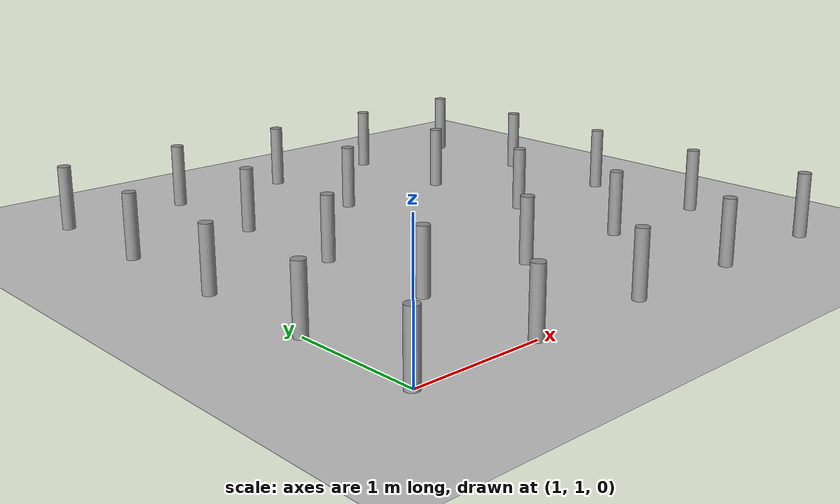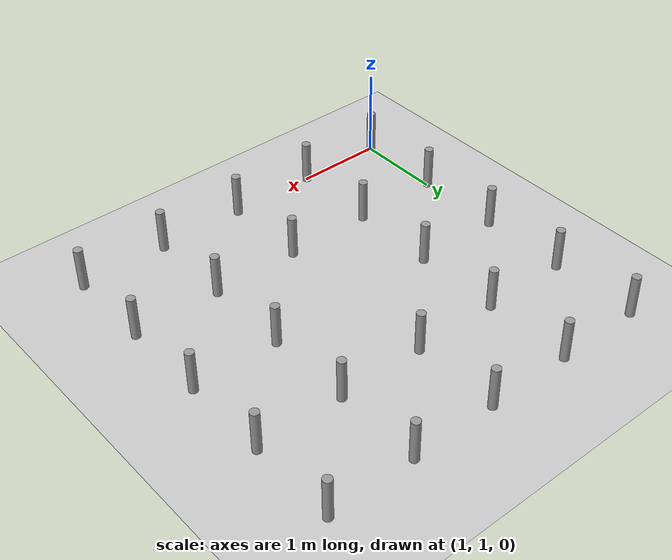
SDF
<sdf version="1.6">
 <world name="default">
  <light name="sun" type="directional">
   <pose>0 0 10 0 -0 0</pose>
   <diffuse>0.8 0.8 0.8 1</diffuse>
   <specular>0.2 0.2 0.2 1</specular>
   <attenuation>
    <range>1000</range>
    <constant>0.9</constant>
    <linear>0.01</linear>
    <quadratic>0.001</quadratic>
   </attenuation>
   <direction>-0.5 0.1 -0.9</direction>
  </light>
  <model name="ground_plane">
   <static>1</static>
   <link name="link">
    <collision name="collision">
     <geometry><plane><normal>0 0 1</normal><size>100 100</size></plane></geometry>
     <surface>
      <contact><collide_bitmask>65535</collide_bitmask></contact>
      <friction><ode><mu>100</mu><mu2>50</mu2></ode></friction>
     </surface>
    </collision>
    <visual name="visual">
     <cast_shadows>0</cast_shadows>
     <geometry><plane><normal>0 0 1</normal><size>100 100</size></plane></geometry>
     <material>
      <script><uri>file://media/materials/scripts/gazebo.material</uri><name>Gazebo/Grey</name></script>
     </material>
    </visual>
   </link>
  </model>
  <gravity>0 0 -9.8</gravity>
  <magnetic_field>6e-06 2.3e-05 -4.2e-05</magnetic_field>
  <atmosphere type="adiabatic"/>
  <physics name="default_physics" default="0" type="ode">
   <max_step_size>0.001</max_step_size>
   <real_time_factor>1</real_time_factor>
   <real_time_update_rate>1000</real_time_update_rate>
  </physics>
  <scene><ambient>0.4 0.4 0.4 1</ambient><background>0.7 0.7 0.7 1</background><shadows>1</shadows></scene>
  <audio><device>default</device></audio>
  <spherical_coordinates>
   <surface_model>EARTH_WGS84</surface_model>
   <latitude_deg>0</latitude_deg>
   <longitude_deg>0</longitude_deg>
   <elevation>0</elevation>
   <heading_deg>0</heading_deg>
  </spherical_coordinates>
  <model name="obstacles">
   <link name="link_0_clone">
    <inertial>
     <mass>1</mass>
     <inertia><ixx>0.145833</ixx><ixy>0</ixy><ixz>0</ixz><iyy>0.145833</iyy><iyz>0</iyz><izz>0.125</izz></inertia>
    </inertial>
    <pose>-2 0 0 0 -0 0</pose>
    <visual name="visual">
     <geometry><cylinder><radius>0.05</radius><length>0.5</length></cylinder></geometry>
     <material>
      <lighting>1</lighting>
      <script><uri>file://media/materials/scripts/gazebo.material</uri><name>Gazebo/Grey</name></script>
      <shader type="vertex"><normal_map>__default__</normal_map></shader>
      <ambient>0.3 0.3 0.3 1</ambient>
      <diffuse>0.7 0.7 0.7 1</diffuse>
      <specular>0.01 0.01 0.01 1</specular>
      <emissive>0 0 0 1</emissive>
     </material>
    </visual>
    <collision name="collision">
     <geometry><cylinder><radius>0.05</radius><length>0.5</length></cylinder></geometry>
     <surface>
      <friction>
       <ode><mu>1</mu><mu2>1</mu2><fdir1>0 0 0</fdir1><slip1>0</slip1><slip2>0</slip2></ode>
       <torsional>
        <coefficient>1</coefficient>
        <patch_radius>0</patch_radius>
        <surface_radius>0</surface_radius>
        <use_patch_radius>1</use_patch_radius>
        <ode><slip>0</slip></ode>
       </torsional>
      </friction>
      <bounce><restitution_coefficient>0</restitution_coefficient><threshold>1e+06</threshold></bounce>
      <contact>
       <collide_without_contact>0</collide_without_contact>
       <collide_without_contact_bitmask>1</collide_without_contact_bitmask>
       <collide_bitmask>1</collide_bitmask>
       <ode>
        <soft_cfm>0</soft_cfm>
        <soft_erp>0.2</soft_erp>
        <kp>1e+13</kp>
        <kd>1</kd>
        <max_vel>0.01</max_vel>
        <min_depth>0</min_depth>
       </ode>
       <bullet>
        <split_impulse>1</split_impulse>
        <split_impulse_penetration_threshold>-0.01</split_impulse_penetration_threshold>
        <soft_cfm>0</soft_cfm>
        <soft_erp>0.2</soft_erp>
        <kp>1e+13</kp>
        <kd>1</kd>
       </bullet>
      </contact>
     </surface>
    </collision>
   </link>
   <link name="link_0_clone_0">
    <inertial>
     <mass>1</mass>
     <inertia><ixx>0.145833</ixx><ixy>0</ixy><ixz>0</ixz><iyy>0.145833</iyy><iyz>0</iyz><izz>0.125</izz></inertia>
    </inertial>
    <pose>-1 0 0 0 -0 0</pose>
    <visual name="visual">
     <geometry><cylinder><radius>0.05</radius><length>0.5</length></cylinder></geometry>
     <material>
      <lighting>1</lighting>
      <script><uri>file://media/materials/scripts/gazebo.material</uri><name>Gazebo/Grey</name></script>
      <shader type="vertex"><normal_map>__default__</normal_map></shader>
      <ambient>0.3 0.3 0.3 1</ambient>
      <diffuse>0.7 0.7 0.7 1</diffuse>
      <specular>0.01 0.01 0.01 1</specular>
      <emissive>0 0 0 1</emissive>
     </material>
    </visual>
    <collision name="collision">
     <geometry><cylinder><radius>0.05</radius><length>0.5</length></cylinder></geometry>
     <surface>
      <friction>
       <ode><mu>1</mu><mu2>1</mu2><fdir1>0 0 0</fdir1><slip1>0</slip1><slip2>0</slip2></ode>
       <torsional>
        <coefficient>1</coefficient>
        <patch_radius>0</patch_radius>
        <surface_radius>0</surface_radius>
        <use_patch_radius>1</use_patch_radius>
        <ode><slip>0</slip></ode>
       </torsional>
      </friction>
      <bounce><restitution_coefficient>0</restitution_coefficient><threshold>1e+06</threshold></bounce>
      <contact>
       <collide_without_contact>0</collide_without_contact>
       <collide_without_contact_bitmask>1</collide_without_contact_bitmask>
       <collide_bitmask>1</collide_bitmask>
       <ode>
        <soft_cfm>0</soft_cfm>
        <soft_erp>0.2</soft_erp>
        <kp>1e+13</kp>
        <kd>1</kd>
        <max_vel>0.01</max_vel>
        <min_depth>0</min_depth>
       </ode>
       <bullet>
        <split_impulse>1</split_impulse>
        <split_impulse_penetration_threshold>-0.01</split_impulse_penetration_threshold>
        <soft_cfm>0</soft_cfm>
        <soft_erp>0.2</soft_erp>
        <kp>1e+13</kp>
        <kd>1</kd>
       </bullet>
      </contact>
     </surface>
    </collision>
   </link>
   <link name="link_0_clone_1">
    <inertial>
     <mass>1</mass>
     <inertia><ixx>0.145833</ixx><ixy>0</ixy><ixz>0</ixz><iyy>0.145833</iyy><iyz>0</iyz><izz>0.125</izz></inertia>
    </inertial>
    <pose>-2 -1 0 0 -0 0</pose>
    <visual name="visual">
     <geometry><cylinder><radius>0.05</radius><length>0.5</length></cylinder></geometry>
     <material>
      <lighting>1</lighting>
      <script><uri>file://media/materials/scripts/gazebo.material</uri><name>Gazebo/Grey</name></script>
      <shader type="vertex"><normal_map>__default__</normal_map></shader>
      <ambient>0.3 0.3 0.3 1</ambient>
      <diffuse>0.7 0.7 0.7 1</diffuse>
      <specular>0.01 0.01 0.01 1</specular>
      <emissive>0 0 0 1</emissive>
     </material>
    </visual>
    <collision name="collision">
     <geometry><cylinder><radius>0.05</radius><length>0.5</length></cylinder></geometry>
     <surface>
      <friction>
       <ode><mu>1</mu><mu2>1</mu2><fdir1>0 0 0</fdir1><slip1>0</slip1><slip2>0</slip2></ode>
       <torsional>
        <coefficient>1</coefficient>
        <patch_radius>0</patch_radius>
        <surface_radius>0</surface_radius>
        <use_patch_radius>1</use_patch_radius>
        <ode><slip>0</slip></ode>
       </torsional>
      </friction>
      <bounce><restitution_coefficient>0</restitution_coefficient><threshold>1e+06</threshold></bounce>
      <contact>
       <collide_without_contact>0</collide_without_contact>
       <collide_without_contact_bitmask>1</collide_without_contact_bitmask>
       <collide_bitmask>1</collide_bitmask>
       <ode>
        <soft_cfm>0</soft_cfm>
        <soft_erp>0.2</soft_erp>
        <kp>1e+13</kp>
        <kd>1</kd>
        <max_vel>0.01</max_vel>
        <min_depth>0</min_depth>
       </ode>
       <bullet>
        <split_impulse>1</split_impulse>
        <split_impulse_penetration_threshold>-0.01</split_impulse_penetration_threshold>
        <soft_cfm>0</soft_cfm>
        <soft_erp>0.2</soft_erp>
        <kp>1e+13</kp>
        <kd>1</kd>
       </bullet>
      </contact>
     </surface>
    </collision>
   </link>
   <link name="link_0_clone_10">
    <inertial>
     <mass>1</mass>
     <inertia><ixx>0.145833</ixx><ixy>0</ixy><ixz>0</ixz><iyy>0.145833</iyy><iyz>0</iyz><izz>0.125</izz></inertia>
    </inertial>
    <pose>2 -1 0 0 -0 0</pose>
    <visual name="visual">
     <geometry><cylinder><radius>0.05</radius><length>0.5</length></cylinder></geometry>
     <material>
      <lighting>1</lighting>
      <script><uri>file://media/materials/scripts/gazebo.material</uri><name>Gazebo/Grey</name></script>
      <shader type="vertex"><normal_map>__default__</normal_map></shader>
      <ambient>0.3 0.3 0.3 1</ambient>
      <diffuse>0.7 0.7 0.7 1</diffuse>
      <specular>0.01 0.01 0.01 1</specular>
      <emissive>0 0 0 1</emissive>
     </material>
    </visual>
    <collision name="collision">
     <geometry><cylinder><radius>0.05</radius><length>0.5</length></cylinder></geometry>
     <surface>
      <friction>
       <ode><mu>1</mu><mu2>1</mu2><fdir1>0 0 0</fdir1><slip1>0</slip1><slip2>0</slip2></ode>
       <torsional>
        <coefficient>1</coefficient>
        <patch_radius>0</patch_radius>
        <surface_radius>0</surface_radius>
        <use_patch_radius>1</use_patch_radius>
        <ode><slip>0</slip></ode>
       </torsional>
      </friction>
      <bounce><restitution_coefficient>0</restitution_coefficient><threshold>1e+06</threshold></bounce>
      <contact>
       <collide_without_contact>0</collide_without_contact>
       <collide_without_contact_bitmask>1</collide_without_contact_bitmask>
       <collide_bitmask>1</collide_bitmask>
       <ode>
        <soft_cfm>0</soft_cfm>
        <soft_erp>0.2</soft_erp>
        <kp>1e+13</kp>
        <kd>1</kd>
        <max_vel>0.01</max_vel>
        <min_depth>0</min_depth>
       </ode>
       <bullet>
        <split_impulse>1</split_impulse>
        <split_impulse_penetration_threshold>-0.01</split_impulse_penetration_threshold>
        <soft_cfm>0</soft_cfm>
        <soft_erp>0.2</soft_erp>
        <kp>1e+13</kp>
        <kd>1</kd>
       </bullet>
      </contact>
     </surface>
    </collision>
   </link>
   <link name="link_0_clone_11">
    <inertial>
     <mass>1</mass>
     <inertia><ixx>0.145833</ixx><ixy>0</ixy><ixz>0</ixz><iyy>0.145833</iyy><iyz>0</iyz><izz>0.125</izz></inertia>
    </inertial>
    <pose>2 0 0 0 -0 0</pose>
    <visual name="visual">
     <geometry><cylinder><radius>0.05</radius><length>0.5</length></cylinder></geometry>
     <material>
      <lighting>1</lighting>
      <script><uri>file://media/materials/scripts/gazebo.material</uri><name>Gazebo/Grey</name></script>
      <shader type="vertex"><normal_map>__default__</normal_map></shader>
      <ambient>0.3 0.3 0.3 1</ambient>
      <diffuse>0.7 0.7 0.7 1</diffuse>
      <specular>0.01 0.01 0.01 1</specular>
      <emissive>0 0 0 1</emissive>
     </material>
    </visual>
    <collision name="collision">
     <geometry><cylinder><radius>0.05</radius><length>0.5</length></cylinder></geometry>
     <surface>
      <friction>
       <ode><mu>1</mu><mu2>1</mu2><fdir1>0 0 0</fdir1><slip1>0</slip1><slip2>0</slip2></ode>
       <torsional>
        <coefficient>1</coefficient>
        <patch_radius>0</patch_radius>
        <surface_radius>0</surface_radius>
        <use_patch_radius>1</use_patch_radius>
        <ode><slip>0</slip></ode>
       </torsional>
      </friction>
      <bounce><restitution_coefficient>0</restitution_coefficient><threshold>1e+06</threshold></bounce>
      <contact>
       <collide_without_contact>0</collide_without_contact>
       <collide_without_contact_bitmask>1</collide_without_contact_bitmask>
       <collide_bitmask>1</collide_bitmask>
       <ode>
        <soft_cfm>0</soft_cfm>
        <soft_erp>0.2</soft_erp>
        <kp>1e+13</kp>
        <kd>1</kd>
        <max_vel>0.01</max_vel>
        <min_depth>0</min_depth>
       </ode>
       <bullet>
        <split_impulse>1</split_impulse>
        <split_impulse_penetration_threshold>-0.01</split_impulse_penetration_threshold>
        <soft_cfm>0</soft_cfm>
        <soft_erp>0.2</soft_erp>
        <kp>1e+13</kp>
        <kd>1</kd>
       </bullet>
      </contact>
     </surface>
    </collision>
   </link>
   <link name="link_0_clone_12">
    <inertial>
     <mass>1</mass>
     <inertia><ixx>0.145833</ixx><ixy>0</ixy><ixz>0</ixz><iyy>0.145833</iyy><iyz>0</iyz><izz>0.125</izz></inertia>
    </inertial>
    <pose>1 0 0 0 -0 0</pose>
    <visual name="visual">
     <geometry><cylinder><radius>0.05</radius><length>0.5</length></cylinder></geometry>
     <material>
      <lighting>1</lighting>
      <script><uri>file://media/materials/scripts/gazebo.material</uri><name>Gazebo/Grey</name></script>
      <shader type="vertex"><normal_map>__default__</normal_map></shader>
      <ambient>0.3 0.3 0.3 1</ambient>
      <diffuse>0.7 0.7 0.7 1</diffuse>
      <specular>0.01 0.01 0.01 1</specular>
      <emissive>0 0 0 1</emissive>
     </material>
    </visual>
    <collision name="collision">
     <geometry><cylinder><radius>0.05</radius><length>0.5</length></cylinder></geometry>
     <surface>
      <friction>
       <ode><mu>1</mu><mu2>1</mu2><fdir1>0 0 0</fdir1><slip1>0</slip1><slip2>0</slip2></ode>
       <torsional>
        <coefficient>1</coefficient>
        <patch_radius>0</patch_radius>
        <surface_radius>0</surface_radius>
        <use_patch_radius>1</use_patch_radius>
        <ode><slip>0</slip></ode>
       </torsional>
      </friction>
      <bounce><restitution_coefficient>0</restitution_coefficient><threshold>1e+06</threshold></bounce>
      <contact>
       <collide_without_contact>0</collide_without_contact>
       <collide_without_contact_bitmask>1</collide_without_contact_bitmask>
       <collide_bitmask>1</collide_bitmask>
       <ode>
        <soft_cfm>0</soft_cfm>
        <soft_erp>0.2</soft_erp>
        <kp>1e+13</kp>
        <kd>1</kd>
        <max_vel>0.01</max_vel>
        <min_depth>0</min_depth>
       </ode>
       <bullet>
        <split_impulse>1</split_impulse>
        <split_impulse_penetration_threshold>-0.01</split_impulse_penetration_threshold>
        <soft_cfm>0</soft_cfm>
        <soft_erp>0.2</soft_erp>
        <kp>1e+13</kp>
        <kd>1</kd>
       </bullet>
      </contact>
     </surface>
    </collision>
   </link>
   <link name="link_0_clone_13">
    <inertial>
     <mass>1</mass>
     <inertia><ixx>0.145833</ixx><ixy>0</ixy><ixz>0</ixz><iyy>0.145833</iyy><iyz>0</iyz><izz>0.125</izz></inertia>
    </inertial>
    <pose>2 1 0 0 -0 0</pose>
    <visual name="visual">
     <geometry><cylinder><radius>0.05</radius><length>0.5</length></cylinder></geometry>
     <material>
      <lighting>1</lighting>
      <script><uri>file://media/materials/scripts/gazebo.material</uri><name>Gazebo/Grey</name></script>
      <shader type="vertex"><normal_map>__default__</normal_map></shader>
      <ambient>0.3 0.3 0.3 1</ambient>
      <diffuse>0.7 0.7 0.7 1</diffuse>
      <specular>0.01 0.01 0.01 1</specular>
      <emissive>0 0 0 1</emissive>
     </material>
    </visual>
    <collision name="collision">
     <geometry><cylinder><radius>0.05</radius><length>0.5</length></cylinder></geometry>
     <surface>
      <friction>
       <ode><mu>1</mu><mu2>1</mu2><fdir1>0 0 0</fdir1><slip1>0</slip1><slip2>0</slip2></ode>
       <torsional>
        <coefficient>1</coefficient>
        <patch_radius>0</patch_radius>
        <surface_radius>0</surface_radius>
        <use_patch_radius>1</use_patch_radius>
        <ode><slip>0</slip></ode>
       </torsional>
      </friction>
      <bounce><restitution_coefficient>0</restitution_coefficient><threshold>1e+06</threshold></bounce>
      <contact>
       <collide_without_contact>0</collide_without_contact>
       <collide_without_contact_bitmask>1</collide_without_contact_bitmask>
       <collide_bitmask>1</collide_bitmask>
       <ode>
        <soft_cfm>0</soft_cfm>
        <soft_erp>0.2</soft_erp>
        <kp>1e+13</kp>
        <kd>1</kd>
        <max_vel>0.01</max_vel>
        <min_depth>0</min_depth>
       </ode>
       <bullet>
        <split_impulse>1</split_impulse>
        <split_impulse_penetration_threshold>-0.01</split_impulse_penetration_threshold>
        <soft_cfm>0</soft_cfm>
        <soft_erp>0.2</soft_erp>
        <kp>1e+13</kp>
        <kd>1</kd>
       </bullet>
      </contact>
     </surface>
    </collision>
   </link>
   <link name="link_0_clone_14">
    <inertial>
     <mass>1</mass>
     <inertia><ixx>0.145833</ixx><ixy>0</ixy><ixz>0</ixz><iyy>0.145833</iyy><iyz>0</iyz><izz>0.125</izz></inertia>
    </inertial>
    <pose>2 2 0 0 -0 0</pose>
    <visual name="visual">
     <geometry><cylinder><radius>0.05</radius><length>0.5</length></cylinder></geometry>
     <material>
      <lighting>1</lighting>
      <script><uri>file://media/materials/scripts/gazebo.material</uri><name>Gazebo/Grey</name></script>
      <shader type="vertex"><normal_map>__default__</normal_map></shader>
      <ambient>0.3 0.3 0.3 1</ambient>
      <diffuse>0.7 0.7 0.7 1</diffuse>
      <specular>0.01 0.01 0.01 1</specular>
      <emissive>0 0 0 1</emissive>
     </material>
    </visual>
    <collision name="collision">
     <geometry><cylinder><radius>0.05</radius><length>0.5</length></cylinder></geometry>
     <surface>
      <friction>
       <ode><mu>1</mu><mu2>1</mu2><fdir1>0 0 0</fdir1><slip1>0</slip1><slip2>0</slip2></ode>
       <torsional>
        <coefficient>1</coefficient>
        <patch_radius>0</patch_radius>
        <surface_radius>0</surface_radius>
        <use_patch_radius>1</use_patch_radius>
        <ode><slip>0</slip></ode>
       </torsional>
      </friction>
      <bounce><restitution_coefficient>0</restitution_coefficient><threshold>1e+06</threshold></bounce>
      <contact>
       <collide_without_contact>0</collide_without_contact>
       <collide_without_contact_bitmask>1</collide_without_contact_bitmask>
       <collide_bitmask>1</collide_bitmask>
       <ode>
        <soft_cfm>0</soft_cfm>
        <soft_erp>0.2</soft_erp>
        <kp>1e+13</kp>
        <kd>1</kd>
        <max_vel>0.01</max_vel>
        <min_depth>0</min_depth>
       </ode>
       <bullet>
        <split_impulse>1</split_impulse>
        <split_impulse_penetration_threshold>-0.01</split_impulse_penetration_threshold>
        <soft_cfm>0</soft_cfm>
        <soft_erp>0.2</soft_erp>
        <kp>1e+13</kp>
        <kd>1</kd>
       </bullet>
      </contact>
     </surface>
    </collision>
   </link>
   <link name="link_0_clone_15">
    <inertial>
     <mass>1</mass>
     <inertia><ixx>0.145833</ixx><ixy>0</ixy><ixz>0</ixz><iyy>0.145833</iyy><iyz>0</iyz><izz>0.125</izz></inertia>
    </inertial>
    <pose>1 2 0 0 -0 0</pose>
    <visual name="visual">
     <geometry><cylinder><radius>0.05</radius><length>0.5</length></cylinder></geometry>
     <material>
      <lighting>1</lighting>
      <script><uri>file://media/materials/scripts/gazebo.material</uri><name>Gazebo/Grey</name></script>
      <shader type="vertex"><normal_map>__default__</normal_map></shader>
      <ambient>0.3 0.3 0.3 1</ambient>
      <diffuse>0.7 0.7 0.7 1</diffuse>
      <specular>0.01 0.01 0.01 1</specular>
      <emissive>0 0 0 1</emissive>
     </material>
    </visual>
    <collision name="collision">
     <geometry><cylinder><radius>0.05</radius><length>0.5</length></cylinder></geometry>
     <surface>
      <friction>
       <ode><mu>1</mu><mu2>1</mu2><fdir1>0 0 0</fdir1><slip1>0</slip1><slip2>0</slip2></ode>
       <torsional>
        <coefficient>1</coefficient>
        <patch_radius>0</patch_radius>
        <surface_radius>0</surface_radius>
        <use_patch_radius>1</use_patch_radius>
        <ode><slip>0</slip></ode>
       </torsional>
      </friction>
      <bounce><restitution_coefficient>0</restitution_coefficient><threshold>1e+06</threshold></bounce>
      <contact>
       <collide_without_contact>0</collide_without_contact>
       <collide_without_contact_bitmask>1</collide_without_contact_bitmask>
       <collide_bitmask>1</collide_bitmask>
       <ode>
        <soft_cfm>0</soft_cfm>
        <soft_erp>0.2</soft_erp>
        <kp>1e+13</kp>
        <kd>1</kd>
        <max_vel>0.01</max_vel>
        <min_depth>0</min_depth>
       </ode>
       <bullet>
        <split_impulse>1</split_impulse>
        <split_impulse_penetration_threshold>-0.01</split_impulse_penetration_threshold>
        <soft_cfm>0</soft_cfm>
        <soft_erp>0.2</soft_erp>
        <kp>1e+13</kp>
        <kd>1</kd>
       </bullet>
      </contact>
     </surface>
    </collision>
   </link>
   <link name="link_0_clone_16">
    <inertial>
     <mass>1</mass>
     <inertia><ixx>0.145833</ixx><ixy>0</ixy><ixz>0</ixz><iyy>0.145833</iyy><iyz>0</iyz><izz>0.125</izz></inertia>
    </inertial>
    <pose>1 1 0 0 -0 0</pose>
    <visual name="visual">
     <geometry><cylinder><radius>0.05</radius><length>0.5</length></cylinder></geometry>
     <material>
      <lighting>1</lighting>
      <script><uri>file://media/materials/scripts/gazebo.material</uri><name>Gazebo/Grey</name></script>
      <shader type="vertex"><normal_map>__default__</normal_map></shader>
      <ambient>0.3 0.3 0.3 1</ambient>
      <diffuse>0.7 0.7 0.7 1</diffuse>
      <specular>0.01 0.01 0.01 1</specular>
      <emissive>0 0 0 1</emissive>
     </material>
    </visual>
    <collision name="collision">
     <geometry><cylinder><radius>0.05</radius><length>0.5</length></cylinder></geometry>
     <surface>
      <friction>
       <ode><mu>1</mu><mu2>1</mu2><fdir1>0 0 0</fdir1><slip1>0</slip1><slip2>0</slip2></ode>
       <torsional>
        <coefficient>1</coefficient>
        <patch_radius>0</patch_radius>
        <surface_radius>0</surface_radius>
        <use_patch_radius>1</use_patch_radius>
        <ode><slip>0</slip></ode>
       </torsional>
      </friction>
      <bounce><restitution_coefficient>0</restitution_coefficient><threshold>1e+06</threshold></bounce>
      <contact>
       <collide_without_contact>0</collide_without_contact>
       <collide_without_contact_bitmask>1</collide_without_contact_bitmask>
       <collide_bitmask>1</collide_bitmask>
       <ode>
        <soft_cfm>0</soft_cfm>
        <soft_erp>0.2</soft_erp>
        <kp>1e+13</kp>
        <kd>1</kd>
        <max_vel>0.01</max_vel>
        <min_depth>0</min_depth>
       </ode>
       <bullet>
        <split_impulse>1</split_impulse>
        <split_impulse_penetration_threshold>-0.01</split_impulse_penetration_threshold>
        <soft_cfm>0</soft_cfm>
        <soft_erp>0.2</soft_erp>
        <kp>1e+13</kp>
        <kd>1</kd>
       </bullet>
      </contact>
     </surface>
    </collision>
   </link>
   <link name="link_0_clone_17">
    <inertial>
     <mass>1</mass>
     <inertia><ixx>0.145833</ixx><ixy>0</ixy><ixz>0</ixz><iyy>0.145833</iyy><iyz>0</iyz><izz>0.125</izz></inertia>
    </inertial>
    <pose>0 2 0 0 -0 0</pose>
    <visual name="visual">
     <geometry><cylinder><radius>0.05</radius><length>0.5</length></cylinder></geometry>
     <material>
      <lighting>1</lighting>
      <script><uri>file://media/materials/scripts/gazebo.material</uri><name>Gazebo/Grey</name></script>
      <shader type="vertex"><normal_map>__default__</normal_map></shader>
      <ambient>0.3 0.3 0.3 1</ambient>
      <diffuse>0.7 0.7 0.7 1</diffuse>
      <specular>0.01 0.01 0.01 1</specular>
      <emissive>0 0 0 1</emissive>
     </material>
    </visual>
    <collision name="collision">
     <geometry><cylinder><radius>0.05</radius><length>0.5</length></cylinder></geometry>
     <surface>
      <friction>
       <ode><mu>1</mu><mu2>1</mu2><fdir1>0 0 0</fdir1><slip1>0</slip1><slip2>0</slip2></ode>
       <torsional>
        <coefficient>1</coefficient>
        <patch_radius>0</patch_radius>
        <surface_radius>0</surface_radius>
        <use_patch_radius>1</use_patch_radius>
        <ode><slip>0</slip></ode>
       </torsional>
      </friction>
      <bounce><restitution_coefficient>0</restitution_coefficient><threshold>1e+06</threshold></bounce>
      <contact>
       <collide_without_contact>0</collide_without_contact>
       <collide_without_contact_bitmask>1</collide_without_contact_bitmask>
       <collide_bitmask>1</collide_bitmask>
       <ode>
        <soft_cfm>0</soft_cfm>
        <soft_erp>0.2</soft_erp>
        <kp>1e+13</kp>
        <kd>1</kd>
        <max_vel>0.01</max_vel>
        <min_depth>0</min_depth>
       </ode>
       <bullet>
        <split_impulse>1</split_impulse>
        <split_impulse_penetration_threshold>-0.01</split_impulse_penetration_threshold>
        <soft_cfm>0</soft_cfm>
        <soft_erp>0.2</soft_erp>
        <kp>1e+13</kp>
        <kd>1</kd>
       </bullet>
      </contact>
     </surface>
    </collision>
   </link>
   <link name="link_0_clone_18">
    <inertial>
     <mass>1</mass>
     <inertia><ixx>0.145833</ixx><ixy>0</ixy><ixz>0</ixz><iyy>0.145833</iyy><iyz>0</iyz><izz>0.125</izz></inertia>
    </inertial>
    <pose>0 1 0 0 -0 0</pose>
    <visual name="visual">
     <geometry><cylinder><radius>0.05</radius><length>0.5</length></cylinder></geometry>
     <material>
      <lighting>1</lighting>
      <script><uri>file://media/materials/scripts/gazebo.material</uri><name>Gazebo/Grey</name></script>
      <shader type="vertex"><normal_map>__default__</normal_map></shader>
      <ambient>0.3 0.3 0.3 1</ambient>
      <diffuse>0.7 0.7 0.7 1</diffuse>
      <specular>0.01 0.01 0.01 1</specular>
      <emissive>0 0 0 1</emissive>
     </material>
    </visual>
    <collision name="collision">
     <geometry><cylinder><radius>0.05</radius><length>0.5</length></cylinder></geometry>
     <surface>
      <friction>
       <ode><mu>1</mu><mu2>1</mu2><fdir1>0 0 0</fdir1><slip1>0</slip1><slip2>0</slip2></ode>
       <torsional>
        <coefficient>1</coefficient>
        <patch_radius>0</patch_radius>
        <surface_radius>0</surface_radius>
        <use_patch_radius>1</use_patch_radius>
        <ode><slip>0</slip></ode>
       </torsional>
      </friction>
      <bounce><restitution_coefficient>0</restitution_coefficient><threshold>1e+06</threshold></bounce>
      <contact>
       <collide_without_contact>0</collide_without_contact>
       <collide_without_contact_bitmask>1</collide_without_contact_bitmask>
       <collide_bitmask>1</collide_bitmask>
       <ode>
        <soft_cfm>0</soft_cfm>
        <soft_erp>0.2</soft_erp>
        <kp>1e+13</kp>
        <kd>1</kd>
        <max_vel>0.01</max_vel>
        <min_depth>0</min_depth>
       </ode>
       <bullet>
        <split_impulse>1</split_impulse>
        <split_impulse_penetration_threshold>-0.01</split_impulse_penetration_threshold>
        <soft_cfm>0</soft_cfm>
        <soft_erp>0.2</soft_erp>
        <kp>1e+13</kp>
        <kd>1</kd>
       </bullet>
      </contact>
     </surface>
    </collision>
   </link>
   <link name="link_0_clone_19">
    <inertial>
     <mass>1</mass>
     <inertia><ixx>0.145833</ixx><ixy>0</ixy><ixz>0</ixz><iyy>0.145833</iyy><iyz>0</iyz><izz>0.125</izz></inertia>
    </inertial>
    <pose>-1 2 0 0 -0 0</pose>
    <visual name="visual">
     <geometry><cylinder><radius>0.05</radius><length>0.5</length></cylinder></geometry>
     <material>
      <lighting>1</lighting>
      <script><uri>file://media/materials/scripts/gazebo.material</uri><name>Gazebo/Grey</name></script>
      <shader type="vertex"><normal_map>__default__</normal_map></shader>
      <ambient>0.3 0.3 0.3 1</ambient>
      <diffuse>0.7 0.7 0.7 1</diffuse>
      <specular>0.01 0.01 0.01 1</specular>
      <emissive>0 0 0 1</emissive>
     </material>
    </visual>
    <collision name="collision">
     <geometry><cylinder><radius>0.05</radius><length>0.5</length></cylinder></geometry>
     <surface>
      <friction>
       <ode><mu>1</mu><mu2>1</mu2><fdir1>0 0 0</fdir1><slip1>0</slip1><slip2>0</slip2></ode>
       <torsional>
        <coefficient>1</coefficient>
        <patch_radius>0</patch_radius>
        <surface_radius>0</surface_radius>
        <use_patch_radius>1</use_patch_radius>
        <ode><slip>0</slip></ode>
       </torsional>
      </friction>
      <bounce><restitution_coefficient>0</restitution_coefficient><threshold>1e+06</threshold></bounce>
      <contact>
       <collide_without_contact>0</collide_without_contact>
       <collide_without_contact_bitmask>1</collide_without_contact_bitmask>
       <collide_bitmask>1</collide_bitmask>
       <ode>
        <soft_cfm>0</soft_cfm>
        <soft_erp>0.2</soft_erp>
        <kp>1e+13</kp>
        <kd>1</kd>
        <max_vel>0.01</max_vel>
        <min_depth>0</min_depth>
       </ode>
       <bullet>
        <split_impulse>1</split_impulse>
        <split_impulse_penetration_threshold>-0.01</split_impulse_penetration_threshold>
        <soft_cfm>0</soft_cfm>
        <soft_erp>0.2</soft_erp>
        <kp>1e+13</kp>
        <kd>1</kd>
       </bullet>
      </contact>
     </surface>
    </collision>
   </link>
   <link name="link_0_clone_2">
    <inertial>
     <mass>1</mass>
     <inertia><ixx>0.145833</ixx><ixy>0</ixy><ixz>0</ixz><iyy>0.145833</iyy><iyz>0</iyz><izz>0.125</izz></inertia>
    </inertial>
    <pose>-2 -2 0 0 -0 0</pose>
    <visual name="visual">
     <geometry><cylinder><radius>0.05</radius><length>0.5</length></cylinder></geometry>
     <material>
      <lighting>1</lighting>
      <script><uri>file://media/materials/scripts/gazebo.material</uri><name>Gazebo/Grey</name></script>
      <shader type="vertex"><normal_map>__default__</normal_map></shader>
      <ambient>0.3 0.3 0.3 1</ambient>
      <diffuse>0.7 0.7 0.7 1</diffuse>
      <specular>0.01 0.01 0.01 1</specular>
      <emissive>0 0 0 1</emissive>
     </material>
    </visual>
    <collision name="collision">
     <geometry><cylinder><radius>0.05</radius><length>0.5</length></cylinder></geometry>
     <surface>
      <friction>
       <ode><mu>1</mu><mu2>1</mu2><fdir1>0 0 0</fdir1><slip1>0</slip1><slip2>0</slip2></ode>
       <torsional>
        <coefficient>1</coefficient>
        <patch_radius>0</patch_radius>
        <surface_radius>0</surface_radius>
        <use_patch_radius>1</use_patch_radius>
        <ode><slip>0</slip></ode>
       </torsional>
      </friction>
      <bounce><restitution_coefficient>0</restitution_coefficient><threshold>1e+06</threshold></bounce>
      <contact>
       <collide_without_contact>0</collide_without_contact>
       <collide_without_contact_bitmask>1</collide_without_contact_bitmask>
       <collide_bitmask>1</collide_bitmask>
       <ode>
        <soft_cfm>0</soft_cfm>
        <soft_erp>0.2</soft_erp>
        <kp>1e+13</kp>
        <kd>1</kd>
        <max_vel>0.01</max_vel>
        <min_depth>0</min_depth>
       </ode>
       <bullet>
        <split_impulse>1</split_impulse>
        <split_impulse_penetration_threshold>-0.01</split_impulse_penetration_threshold>
        <soft_cfm>0</soft_cfm>
        <soft_erp>0.2</soft_erp>
        <kp>1e+13</kp>
        <kd>1</kd>
       </bullet>
      </contact>
     </surface>
    </collision>
   </link>
   <link name="link_0_clone_20">
    <inertial>
     <mass>1</mass>
     <inertia><ixx>0.145833</ixx><ixy>0</ixy><ixz>0</ixz><iyy>0.145833</iyy><iyz>0</iyz><izz>0.125</izz></inertia>
    </inertial>
    <pose>-1 1 0 0 -0 0</pose>
    <visual name="visual">
     <geometry><cylinder><radius>0.05</radius><length>0.5</length></cylinder></geometry>
     <material>
      <lighting>1</lighting>
      <script><uri>file://media/materials/scripts/gazebo.material</uri><name>Gazebo/Grey</name></script>
      <shader type="vertex"><normal_map>__default__</normal_map></shader>
      <ambient>0.3 0.3 0.3 1</ambient>
      <diffuse>0.7 0.7 0.7 1</diffuse>
      <specular>0.01 0.01 0.01 1</specular>
      <emissive>0 0 0 1</emissive>
     </material>
    </visual>
    <collision name="collision">
     <geometry><cylinder><radius>0.05</radius><length>0.5</length></cylinder></geometry>
     <surface>
      <friction>
       <ode><mu>1</mu><mu2>1</mu2><fdir1>0 0 0</fdir1><slip1>0</slip1><slip2>0</slip2></ode>
       <torsional>
        <coefficient>1</coefficient>
        <patch_radius>0</patch_radius>
        <surface_radius>0</surface_radius>
        <use_patch_radius>1</use_patch_radius>
        <ode><slip>0</slip></ode>
       </torsional>
      </friction>
      <bounce><restitution_coefficient>0</restitution_coefficient><threshold>1e+06</threshold></bounce>
      <contact>
       <collide_without_contact>0</collide_without_contact>
       <collide_without_contact_bitmask>1</collide_without_contact_bitmask>
       <collide_bitmask>1</collide_bitmask>
       <ode>
        <soft_cfm>0</soft_cfm>
        <soft_erp>0.2</soft_erp>
        <kp>1e+13</kp>
        <kd>1</kd>
        <max_vel>0.01</max_vel>
        <min_depth>0</min_depth>
       </ode>
       <bullet>
        <split_impulse>1</split_impulse>
        <split_impulse_penetration_threshold>-0.01</split_impulse_penetration_threshold>
        <soft_cfm>0</soft_cfm>
        <soft_erp>0.2</soft_erp>
        <kp>1e+13</kp>
        <kd>1</kd>
       </bullet>
      </contact>
     </surface>
    </collision>
   </link>
   <link name="link_0_clone_21">
    <inertial>
     <mass>1</mass>
     <inertia><ixx>0.145833</ixx><ixy>0</ixy><ixz>0</ixz><iyy>0.145833</iyy><iyz>0</iyz><izz>0.125</izz></inertia>
    </inertial>
    <pose>-2 2 0 0 -0 0</pose>
    <visual name="visual">
     <geometry><cylinder><radius>0.05</radius><length>0.5</length></cylinder></geometry>
     <material>
      <lighting>1</lighting>
      <script><uri>file://media/materials/scripts/gazebo.material</uri><name>Gazebo/Grey</name></script>
      <shader type="vertex"><normal_map>__default__</normal_map></shader>
      <ambient>0.3 0.3 0.3 1</ambient>
      <diffuse>0.7 0.7 0.7 1</diffuse>
      <specular>0.01 0.01 0.01 1</specular>
      <emissive>0 0 0 1</emissive>
     </material>
    </visual>
    <collision name="collision">
     <geometry><cylinder><radius>0.05</radius><length>0.5</length></cylinder></geometry>
     <surface>
      <friction>
       <ode><mu>1</mu><mu2>1</mu2><fdir1>0 0 0</fdir1><slip1>0</slip1><slip2>0</slip2></ode>
       <torsional>
        <coefficient>1</coefficient>
        <patch_radius>0</patch_radius>
        <surface_radius>0</surface_radius>
        <use_patch_radius>1</use_patch_radius>
        <ode><slip>0</slip></ode>
       </torsional>
      </friction>
      <bounce><restitution_coefficient>0</restitution_coefficient><threshold>1e+06</threshold></bounce>
      <contact>
       <collide_without_contact>0</collide_without_contact>
       <collide_without_contact_bitmask>1</collide_without_contact_bitmask>
       <collide_bitmask>1</collide_bitmask>
       <ode>
        <soft_cfm>0</soft_cfm>
        <soft_erp>0.2</soft_erp>
        <kp>1e+13</kp>
        <kd>1</kd>
        <max_vel>0.01</max_vel>
        <min_depth>0</min_depth>
       </ode>
       <bullet>
        <split_impulse>1</split_impulse>
        <split_impulse_penetration_threshold>-0.01</split_impulse_penetration_threshold>
        <soft_cfm>0</soft_cfm>
        <soft_erp>0.2</soft_erp>
        <kp>1e+13</kp>
        <kd>1</kd>
       </bullet>
      </contact>
     </surface>
    </collision>
   </link>
   <link name="link_0_clone_22">
    <inertial>
     <mass>1</mass>
     <inertia><ixx>0.145833</ixx><ixy>0</ixy><ixz>0</ixz><iyy>0.145833</iyy><iyz>0</iyz><izz>0.125</izz></inertia>
    </inertial>
    <pose>-2 1 0 0 -0 0</pose>
    <visual name="visual">
     <geometry><cylinder><radius>0.05</radius><length>0.5</length></cylinder></geometry>
     <material>
      <lighting>1</lighting>
      <script><uri>file://media/materials/scripts/gazebo.material</uri><name>Gazebo/Grey</name></script>
      <shader type="vertex"><normal_map>__default__</normal_map></shader>
      <ambient>0.3 0.3 0.3 1</ambient>
      <diffuse>0.7 0.7 0.7 1</diffuse>
      <specular>0.01 0.01 0.01 1</specular>
      <emissive>0 0 0 1</emissive>
     </material>
    </visual>
    <collision name="collision">
     <geometry><cylinder><radius>0.05</radius><length>0.5</length></cylinder></geometry>
     <surface>
      <friction>
       <ode><mu>1</mu><mu2>1</mu2><fdir1>0 0 0</fdir1><slip1>0</slip1><slip2>0</slip2></ode>
       <torsional>
        <coefficient>1</coefficient>
        <patch_radius>0</patch_radius>
        <surface_radius>0</surface_radius>
        <use_patch_radius>1</use_patch_radius>
        <ode><slip>0</slip></ode>
       </torsional>
      </friction>
      <bounce><restitution_coefficient>0</restitution_coefficient><threshold>1e+06</threshold></bounce>
      <contact>
       <collide_without_contact>0</collide_without_contact>
       <collide_without_contact_bitmask>1</collide_without_contact_bitmask>
       <collide_bitmask>1</collide_bitmask>
       <ode>
        <soft_cfm>0</soft_cfm>
        <soft_erp>0.2</soft_erp>
        <kp>1e+13</kp>
        <kd>1</kd>
        <max_vel>0.01</max_vel>
        <min_depth>0</min_depth>
       </ode>
       <bullet>
        <split_impulse>1</split_impulse>
        <split_impulse_penetration_threshold>-0.01</split_impulse_penetration_threshold>
        <soft_cfm>0</soft_cfm>
        <soft_erp>0.2</soft_erp>
        <kp>1e+13</kp>
        <kd>1</kd>
       </bullet>
      </contact>
     </surface>
    </collision>
   </link>
   <link name="link_0_clone_3">
    <inertial>
     <mass>1</mass>
     <inertia><ixx>0.145833</ixx><ixy>0</ixy><ixz>0</ixz><iyy>0.145833</iyy><iyz>0</iyz><izz>0.125</izz></inertia>
    </inertial>
    <pose>-1 -2 0 0 -0 0</pose>
    <visual name="visual">
     <geometry><cylinder><radius>0.05</radius><length>0.5</length></cylinder></geometry>
     <material>
      <lighting>1</lighting>
      <script><uri>file://media/materials/scripts/gazebo.material</uri><name>Gazebo/Grey</name></script>
      <shader type="vertex"><normal_map>__default__</normal_map></shader>
      <ambient>0.3 0.3 0.3 1</ambient>
      <diffuse>0.7 0.7 0.7 1</diffuse>
      <specular>0.01 0.01 0.01 1</specular>
      <emissive>0 0 0 1</emissive>
     </material>
    </visual>
    <collision name="collision">
     <geometry><cylinder><radius>0.05</radius><length>0.5</length></cylinder></geometry>
     <surface>
      <friction>
       <ode><mu>1</mu><mu2>1</mu2><fdir1>0 0 0</fdir1><slip1>0</slip1><slip2>0</slip2></ode>
       <torsional>
        <coefficient>1</coefficient>
        <patch_radius>0</patch_radius>
        <surface_radius>0</surface_radius>
        <use_patch_radius>1</use_patch_radius>
        <ode><slip>0</slip></ode>
       </torsional>
      </friction>
      <bounce><restitution_coefficient>0</restitution_coefficient><threshold>1e+06</threshold></bounce>
      <contact>
       <collide_without_contact>0</collide_without_contact>
       <collide_without_contact_bitmask>1</collide_without_contact_bitmask>
       <collide_bitmask>1</collide_bitmask>
       <ode>
        <soft_cfm>0</soft_cfm>
        <soft_erp>0.2</soft_erp>
        <kp>1e+13</kp>
        <kd>1</kd>
        <max_vel>0.01</max_vel>
        <min_depth>0</min_depth>
       </ode>
       <bullet>
        <split_impulse>1</split_impulse>
        <split_impulse_penetration_threshold>-0.01</split_impulse_penetration_threshold>
        <soft_cfm>0</soft_cfm>
        <soft_erp>0.2</soft_erp>
        <kp>1e+13</kp>
        <kd>1</kd>
       </bullet>
      </contact>
     </surface>
    </collision>
   </link>
   <link name="link_0_clone_4">
    <inertial>
     <mass>1</mass>
     <inertia><ixx>0.145833</ixx><ixy>0</ixy><ixz>0</ixz><iyy>0.145833</iyy><iyz>0</iyz><izz>0.125</izz></inertia>
    </inertial>
    <pose>-1 -1 0 0 -0 0</pose>
    <visual name="visual">
     <geometry><cylinder><radius>0.05</radius><length>0.5</length></cylinder></geometry>
     <material>
      <lighting>1</lighting>
      <script><uri>file://media/materials/scripts/gazebo.material</uri><name>Gazebo/Grey</name></script>
      <shader type="vertex"><normal_map>__default__</normal_map></shader>
      <ambient>0.3 0.3 0.3 1</ambient>
      <diffuse>0.7 0.7 0.7 1</diffuse>
      <specular>0.01 0.01 0.01 1</specular>
      <emissive>0 0 0 1</emissive>
     </material>
    </visual>
    <collision name="collision">
     <geometry><cylinder><radius>0.05</radius><length>0.5</length></cylinder></geometry>
     <surface>
      <friction>
       <ode><mu>1</mu><mu2>1</mu2><fdir1>0 0 0</fdir1><slip1>0</slip1><slip2>0</slip2></ode>
       <torsional>
        <coefficient>1</coefficient>
        <patch_radius>0</patch_radius>
        <surface_radius>0</surface_radius>
        <use_patch_radius>1</use_patch_radius>
        <ode><slip>0</slip></ode>
       </torsional>
      </friction>
      <bounce><restitution_coefficient>0</restitution_coefficient><threshold>1e+06</threshold></bounce>
      <contact>
       <collide_without_contact>0</collide_without_contact>
       <collide_without_contact_bitmask>1</collide_without_contact_bitmask>
       <collide_bitmask>1</collide_bitmask>
       <ode>
        <soft_cfm>0</soft_cfm>
        <soft_erp>0.2</soft_erp>
        <kp>1e+13</kp>
        <kd>1</kd>
        <max_vel>0.01</max_vel>
        <min_depth>0</min_depth>
       </ode>
       <bullet>
        <split_impulse>1</split_impulse>
        <split_impulse_penetration_threshold>-0.01</split_impulse_penetration_threshold>
        <soft_cfm>0</soft_cfm>
        <soft_erp>0.2</soft_erp>
        <kp>1e+13</kp>
        <kd>1</kd>
       </bullet>
      </contact>
     </surface>
    </collision>
   </link>
   <link name="link_0_clone_5">
    <inertial>
     <mass>1</mass>
     <inertia><ixx>0.145833</ixx><ixy>0</ixy><ixz>0</ixz><iyy>0.145833</iyy><iyz>0</iyz><izz>0.125</izz></inertia>
    </inertial>
    <pose>0 -2 0 0 -0 0</pose>
    <visual name="visual">
     <geometry><cylinder><radius>0.05</radius><length>0.5</length></cylinder></geometry>
     <material>
      <lighting>1</lighting>
      <script><uri>file://media/materials/scripts/gazebo.material</uri><name>Gazebo/Grey</name></script>
      <shader type="vertex"><normal_map>__default__</normal_map></shader>
      <ambient>0.3 0.3 0.3 1</ambient>
      <diffuse>0.7 0.7 0.7 1</diffuse>
      <specular>0.01 0.01 0.01 1</specular>
      <emissive>0 0 0 1</emissive>
     </material>
    </visual>
    <collision name="collision">
     <geometry><cylinder><radius>0.05</radius><length>0.5</length></cylinder></geometry>
     <surface>
      <friction>
       <ode><mu>1</mu><mu2>1</mu2><fdir1>0 0 0</fdir1><slip1>0</slip1><slip2>0</slip2></ode>
       <torsional>
        <coefficient>1</coefficient>
        <patch_radius>0</patch_radius>
        <surface_radius>0</surface_radius>
        <use_patch_radius>1</use_patch_radius>
        <ode><slip>0</slip></ode>
       </torsional>
      </friction>
      <bounce><restitution_coefficient>0</restitution_coefficient><threshold>1e+06</threshold></bounce>
      <contact>
       <collide_without_contact>0</collide_without_contact>
       <collide_without_contact_bitmask>1</collide_without_contact_bitmask>
       <collide_bitmask>1</collide_bitmask>
       <ode>
        <soft_cfm>0</soft_cfm>
        <soft_erp>0.2</soft_erp>
        <kp>1e+13</kp>
        <kd>1</kd>
        <max_vel>0.01</max_vel>
        <min_depth>0</min_depth>
       </ode>
       <bullet>
        <split_impulse>1</split_impulse>
        <split_impulse_penetration_threshold>-0.01</split_impulse_penetration_threshold>
        <soft_cfm>0</soft_cfm>
        <soft_erp>0.2</soft_erp>
        <kp>1e+13</kp>
        <kd>1</kd>
       </bullet>
      </contact>
     </surface>
    </collision>
   </link>
   <link name="link_0_clone_6">
    <inertial>
     <mass>1</mass>
     <inertia><ixx>0.145833</ixx><ixy>0</ixy><ixz>0</ixz><iyy>0.145833</iyy><iyz>0</iyz><izz>0.125</izz></inertia>
    </inertial>
    <pose>0 -1 0 0 -0 0</pose>
    <visual name="visual">
     <geometry><cylinder><radius>0.05</radius><length>0.5</length></cylinder></geometry>
     <material>
      <lighting>1</lighting>
      <script><uri>file://media/materials/scripts/gazebo.material</uri><name>Gazebo/Grey</name></script>
      <shader type="vertex"><normal_map>__default__</normal_map></shader>
      <ambient>0.3 0.3 0.3 1</ambient>
      <diffuse>0.7 0.7 0.7 1</diffuse>
      <specular>0.01 0.01 0.01 1</specular>
      <emissive>0 0 0 1</emissive>
     </material>
    </visual>
    <collision name="collision">
     <geometry><cylinder><radius>0.05</radius><length>0.5</length></cylinder></geometry>
     <surface>
      <friction>
       <ode><mu>1</mu><mu2>1</mu2><fdir1>0 0 0</fdir1><slip1>0</slip1><slip2>0</slip2></ode>
       <torsional>
        <coefficient>1</coefficient>
        <patch_radius>0</patch_radius>
        <surface_radius>0</surface_radius>
        <use_patch_radius>1</use_patch_radius>
        <ode><slip>0</slip></ode>
       </torsional>
      </friction>
      <bounce><restitution_coefficient>0</restitution_coefficient><threshold>1e+06</threshold></bounce>
      <contact>
       <collide_without_contact>0</collide_without_contact>
       <collide_without_contact_bitmask>1</collide_without_contact_bitmask>
       <collide_bitmask>1</collide_bitmask>
       <ode>
        <soft_cfm>0</soft_cfm>
        <soft_erp>0.2</soft_erp>
        <kp>1e+13</kp>
        <kd>1</kd>
        <max_vel>0.01</max_vel>
        <min_depth>0</min_depth>
       </ode>
       <bullet>
        <split_impulse>1</split_impulse>
        <split_impulse_penetration_threshold>-0.01</split_impulse_penetration_threshold>
        <soft_cfm>0</soft_cfm>
        <soft_erp>0.2</soft_erp>
        <kp>1e+13</kp>
        <kd>1</kd>
       </bullet>
      </contact>
     </surface>
    </collision>
   </link>
   <link name="link_0_clone_7">
    <inertial>
     <mass>1</mass>
     <inertia><ixx>0.145833</ixx><ixy>0</ixy><ixz>0</ixz><iyy>0.145833</iyy><iyz>0</iyz><izz>0.125</izz></inertia>
    </inertial>
    <pose>1 -2 0 0 -0 0</pose>
    <visual name="visual">
     <geometry><cylinder><radius>0.05</radius><length>0.5</length></cylinder></geometry>
     <material>
      <lighting>1</lighting>
      <script><uri>file://media/materials/scripts/gazebo.material</uri><name>Gazebo/Grey</name></script>
      <shader type="vertex"><normal_map>__default__</normal_map></shader>
      <ambient>0.3 0.3 0.3 1</ambient>
      <diffuse>0.7 0.7 0.7 1</diffuse>
      <specular>0.01 0.01 0.01 1</specular>
      <emissive>0 0 0 1</emissive>
     </material>
    </visual>
    <collision name="collision">
     <geometry><cylinder><radius>0.05</radius><length>0.5</length></cylinder></geometry>
     <surface>
      <friction>
       <ode><mu>1</mu><mu2>1</mu2><fdir1>0 0 0</fdir1><slip1>0</slip1><slip2>0</slip2></ode>
       <torsional>
        <coefficient>1</coefficient>
        <patch_radius>0</patch_radius>
        <surface_radius>0</surface_radius>
        <use_patch_radius>1</use_patch_radius>
        <ode><slip>0</slip></ode>
       </torsional>
      </friction>
      <bounce><restitution_coefficient>0</restitution_coefficient><threshold>1e+06</threshold></bounce>
      <contact>
       <collide_without_contact>0</collide_without_contact>
       <collide_without_contact_bitmask>1</collide_without_contact_bitmask>
       <collide_bitmask>1</collide_bitmask>
       <ode>
        <soft_cfm>0</soft_cfm>
        <soft_erp>0.2</soft_erp>
        <kp>1e+13</kp>
        <kd>1</kd>
        <max_vel>0.01</max_vel>
        <min_depth>0</min_depth>
       </ode>
       <bullet>
        <split_impulse>1</split_impulse>
        <split_impulse_penetration_threshold>-0.01</split_impulse_penetration_threshold>
        <soft_cfm>0</soft_cfm>
        <soft_erp>0.2</soft_erp>
        <kp>1e+13</kp>
        <kd>1</kd>
       </bullet>
      </contact>
     </surface>
    </collision>
   </link>
   <link name="link_0_clone_8">
    <inertial>
     <mass>1</mass>
     <inertia><ixx>0.145833</ixx><ixy>0</ixy><ixz>0</ixz><iyy>0.145833</iyy><iyz>0</iyz><izz>0.125</izz></inertia>
    </inertial>
    <pose>1 -1 0 0 -0 0</pose>
    <visual name="visual">
     <geometry><cylinder><radius>0.05</radius><length>0.5</length></cylinder></geometry>
     <material>
      <lighting>1</lighting>
      <script><uri>file://media/materials/scripts/gazebo.material</uri><name>Gazebo/Grey</name></script>
      <shader type="vertex"><normal_map>__default__</normal_map></shader>
      <ambient>0.3 0.3 0.3 1</ambient>
      <diffuse>0.7 0.7 0.7 1</diffuse>
      <specular>0.01 0.01 0.01 1</specular>
      <emissive>0 0 0 1</emissive>
     </material>
    </visual>
    <collision name="collision">
     <geometry><cylinder><radius>0.05</radius><length>0.5</length></cylinder></geometry>
     <surface>
      <friction>
       <ode><mu>1</mu><mu2>1</mu2><fdir1>0 0 0</fdir1><slip1>0</slip1><slip2>0</slip2></ode>
       <torsional>
        <coefficient>1</coefficient>
        <patch_radius>0</patch_radius>
        <surface_radius>0</surface_radius>
        <use_patch_radius>1</use_patch_radius>
        <ode><slip>0</slip></ode>
       </torsional>
      </friction>
      <bounce><restitution_coefficient>0</restitution_coefficient><threshold>1e+06</threshold></bounce>
      <contact>
       <collide_without_contact>0</collide_without_contact>
       <collide_without_contact_bitmask>1</collide_without_contact_bitmask>
       <collide_bitmask>1</collide_bitmask>
       <ode>
        <soft_cfm>0</soft_cfm>
        <soft_erp>0.2</soft_erp>
        <kp>1e+13</kp>
        <kd>1</kd>
        <max_vel>0.01</max_vel>
        <min_depth>0</min_depth>
       </ode>
       <bullet>
        <split_impulse>1</split_impulse>
        <split_impulse_penetration_threshold>-0.01</split_impulse_penetration_threshold>
        <soft_cfm>0</soft_cfm>
        <soft_erp>0.2</soft_erp>
        <kp>1e+13</kp>
        <kd>1</kd>
       </bullet>
      </contact>
     </surface>
    </collision>
   </link>
   <link name="link_0_clone_9">
    <inertial>
     <mass>1</mass>
     <inertia><ixx>0.145833</ixx><ixy>0</ixy><ixz>0</ixz><iyy>0.145833</iyy><iyz>0</iyz><izz>0.125</izz></inertia>
    </inertial>
    <pose>2 -2 0 0 -0 0</pose>
    <visual name="visual">
     <geometry><cylinder><radius>0.05</radius><length>0.5</length></cylinder></geometry>
     <material>
      <lighting>1</lighting>
      <script><uri>file://media/materials/scripts/gazebo.material</uri><name>Gazebo/Grey</name></script>
      <shader type="vertex"><normal_map>__default__</normal_map></shader>
      <ambient>0.3 0.3 0.3 1</ambient>
      <diffuse>0.7 0.7 0.7 1</diffuse>
      <specular>0.01 0.01 0.01 1</specular>
      <emissive>0 0 0 1</emissive>
     </material>
    </visual>
    <collision name="collision">
     <geometry><cylinder><radius>0.05</radius><length>0.5</length></cylinder></geometry>
     <surface>
      <friction>
       <ode><mu>1</mu><mu2>1</mu2><fdir1>0 0 0</fdir1><slip1>0</slip1><slip2>0</slip2></ode>
       <torsional>
        <coefficient>1</coefficient>
        <patch_radius>0</patch_radius>
        <surface_radius>0</surface_radius>
        <use_patch_radius>1</use_patch_radius>
        <ode><slip>0</slip></ode>
       </torsional>
      </friction>
      <bounce><restitution_coefficient>0</restitution_coefficient><threshold>1e+06</threshold></bounce>
      <contact>
       <collide_without_contact>0</collide_without_contact>
       <collide_without_contact_bitmask>1</collide_without_contact_bitmask>
       <collide_bitmask>1</collide_bitmask>
       <ode>
        <soft_cfm>0</soft_cfm>
        <soft_erp>0.2</soft_erp>
        <kp>1e+13</kp>
        <kd>1</kd>
        <max_vel>0.01</max_vel>
        <min_depth>0</min_depth>
       </ode>
       <bullet>
        <split_impulse>1</split_impulse>
        <split_impulse_penetration_threshold>-0.01</split_impulse_penetration_threshold>
        <soft_cfm>0</soft_cfm>
        <soft_erp>0.2</soft_erp>
        <kp>1e+13</kp>
        <kd>1</kd>
       </bullet>
      </contact>
     </surface>
    </collision>
   </link>
   <static>0</static>
   <pose>2.99444 3.00498 0.249994 0 0 -5e-06</pose>
  </model>
 </world>
</sdf>
